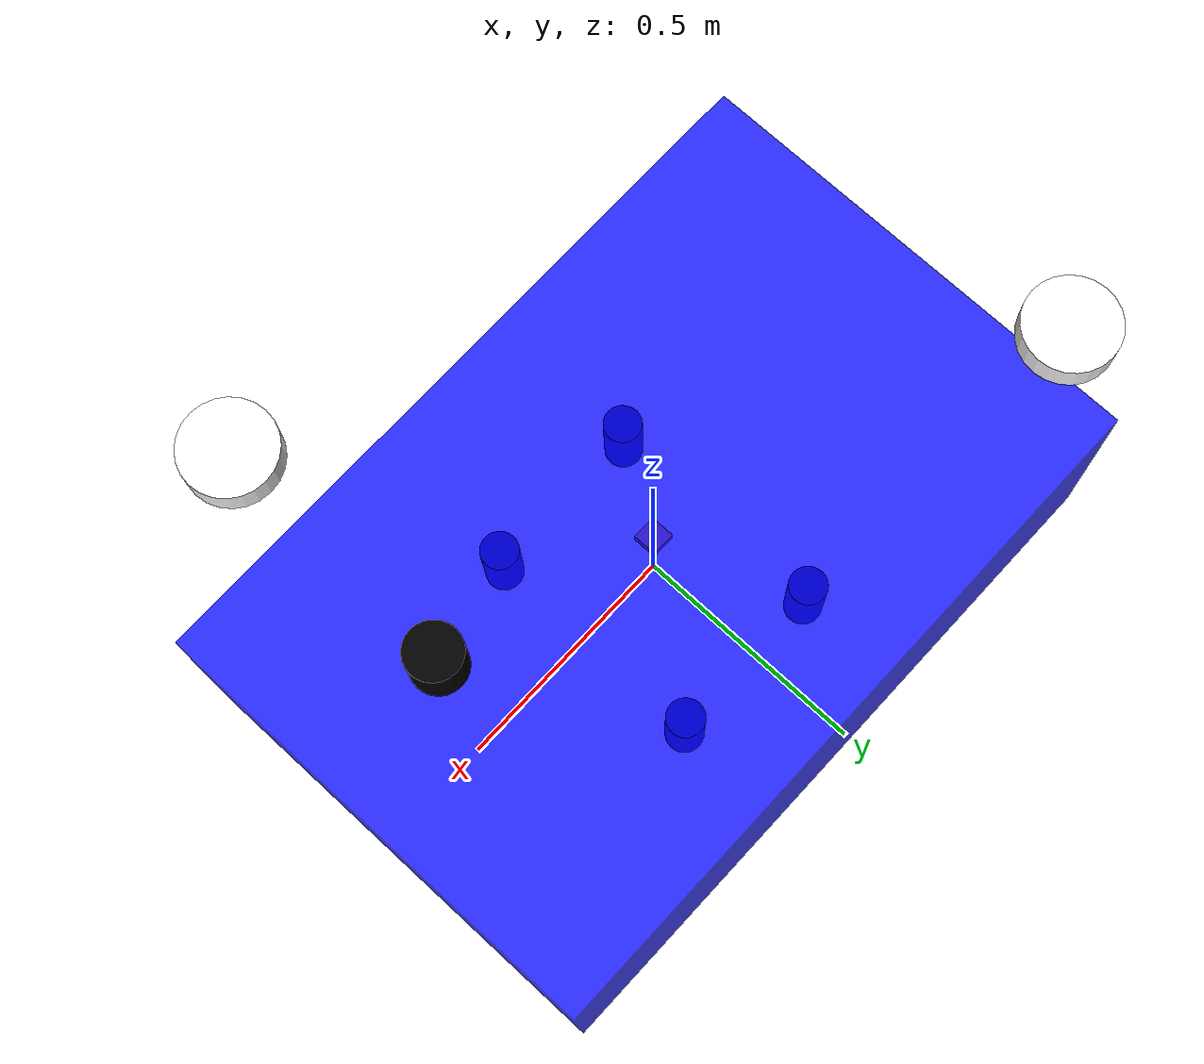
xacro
<?xml version="1.0"?>
<robot name="njord_asv" xmlns:xacro="http://ros.org/wiki/xacro">

  <xacro:property name="base_width" value="1.0" />
  <xacro:property name="base_length" value="1.5" />
  <xacro:property name="base_height" value="0.5" />

  <xacro:property name="lidar_x" value="0.5" />
  <xacro:property name="lidar_y" value="0.0" />
  <xacro:property name="lidar_z" value="0.8" />

  <xacro:property name="imu_x" value="0.0" />
  <xacro:property name="imu_y" value="0.0" />
  <xacro:property name="imu_z" value="0.2" />

  <xacro:property name="gnss1_x" value="-0.5" />
  <xacro:property name="gnss1_y" value="0.4" />
  <xacro:property name="gnss1_z" value="1.0" />

  <xacro:property name="gnss2_x" value="0.5" />
  <xacro:property name="gnss2_y" value="-0.4" />
  <xacro:property name="gnss2_z" value="1.0" />

  <xacro:property name="thruster_front_x" value="0.1803" />
  <xacro:property name="thruster_rear_x" value="-0.1803" />
  <xacro:property name="thruster_right_y" value="-0.2500" />
  <xacro:property name="thruster_left_y" value="0.2500" />
  <xacro:property name="thruster_z" value="-0.1" />

  <xacro:macro name="thruster_link" params="name x y z">
    <link name="${name}">
      <visual>
        <geometry>
          <cylinder radius="0.04" length="0.16"/>
        </geometry>
        <material name="black"/>
      </visual>
    </link>
    <joint name="${name}_joint" type="fixed">
      <parent link="base_link"/>
      <child link="${name}"/>
      <origin xyz="${x} ${y} ${z}" rpy="0 0 0"/>
    </joint>
  </xacro:macro>

  <link name="base_link">
    <visual>
      <geometry>
        <box size="${base_length} ${base_width} ${base_height}"/>
      </geometry>
      <material name="blue">
        <color rgba="0.0 0.0 1.0 0.8"/>
      </material>
    </visual>
    <collision>
      <geometry>
        <box size="${base_length} ${base_width} ${base_height}"/>
      </geometry>
    </collision>
  </link>

  <!-- ZED2i left camera optical-origin frame, rigidly mounted at the bow. -->
  <link name="zed2i_left_camera_frame"/>

  <joint name="zed2i_left_camera_joint" type="fixed">
    <parent link="base_link"/>
    <child link="zed2i_left_camera_frame"/>
    <origin xyz="0.48 0 0.47" rpy="0 0 0"/>
  </joint>

  <!-- The right imager is 15 cm to starboard of the left imager. -->
  <link name="zed2i_right_camera_frame"/>

  <joint name="zed2i_right_camera_joint" type="fixed">
    <parent link="zed2i_left_camera_frame"/>
    <child link="zed2i_right_camera_frame"/>
    <origin xyz="0 -0.15 0" rpy="0 0 0"/>
  </joint>

  <!-- Rear camera: 60 cm aft of the ZED2i stereo centre, facing aft.
       Relative to the left imager, the stereo centre is 7.5 cm starboard. -->
  <link name="back_cam_link"/>

  <joint name="back_cam_joint" type="fixed">
    <parent link="zed2i_left_camera_frame"/>
    <child link="back_cam_link"/>
    <origin xyz="-0.60 -0.075 0" rpy="0 0 3.141592653589793"/>
  </joint>

  <link name="livox_frame">
    <visual>
      <geometry>
        <cylinder radius="0.05" length="0.1"/>
      </geometry>
      <material name="black">
        <color rgba="0.0 0.0 0.0 1.0"/>
      </material>
    </visual>
  </link>

  <joint name="lidar_joint" type="fixed">
    <parent link="base_link"/>
    <child link="livox_frame"/>
    <!-- The MID-360 is mounted upside down: preserve its origin while
         rotating its frame 180 degrees around the vehicle X axis. -->
    <origin xyz="${lidar_x} ${lidar_y} ${lidar_z}" rpy="3.141592653589793 0 0"/>
  </joint>

  <link name="imu_link">
    <visual>
      <geometry>
        <box size="0.05 0.05 0.02"/>
      </geometry>
      <material name="orange">
        <color rgba="1.0 0.5 0.0 1.0"/>
      </material>
    </visual>
  </link>

  <joint name="imu_joint" type="fixed">
    <parent link="base_link"/>
    <child link="imu_link"/>
    <origin xyz="${imu_x} ${imu_y} ${imu_z}" rpy="0 0 0"/>
  </joint>

  <!-- Placeholder Spatial extrinsics. Measure and replace before tuning fusion. -->
  <link name="spatial_link"/>

  <joint name="spatial_joint" type="fixed">
    <parent link="base_link"/>
    <child link="spatial_link"/>
    <origin xyz="0 0 0" rpy="0 0 0"/>
  </joint>

  <link name="gnss_link">
    <visual>
      <geometry>
        <cylinder radius="0.08" length="0.05"/>
      </geometry>
      <material name="white">
        <color rgba="1.0 1.0 1.0 1.0"/>
      </material>
    </visual>
  </link>

  <joint name="gnss_joint" type="fixed">
    <parent link="base_link"/>
    <child link="gnss_link"/>
    <origin xyz="${gnss1_x} ${gnss1_y} ${gnss1_z}" rpy="0 0 0"/>
  </joint>

  <link name="gnss_sub_link">
     <visual>
      <geometry>
        <cylinder radius="0.08" length="0.05"/>
      </geometry>
      <material name="white"/>
    </visual>
  </link>

  <joint name="gnss_sub_joint" type="fixed">
    <parent link="base_link"/>
    <child link="gnss_sub_link"/>
    <origin xyz="${gnss2_x} ${gnss2_y} ${gnss2_z}" rpy="0 0 0"/>
  </joint>

  <xacro:thruster_link name="thruster_FR" x="${thruster_front_x}" y="${thruster_right_y}" z="${thruster_z}"/>
  <xacro:thruster_link name="thruster_FL" x="${thruster_front_x}" y="${thruster_left_y}" z="${thruster_z}"/>
  <xacro:thruster_link name="thruster_RR" x="${thruster_rear_x}" y="${thruster_right_y}" z="${thruster_z}"/>
  <xacro:thruster_link name="thruster_RL" x="${thruster_rear_x}" y="${thruster_left_y}" z="${thruster_z}"/>

</robot>
